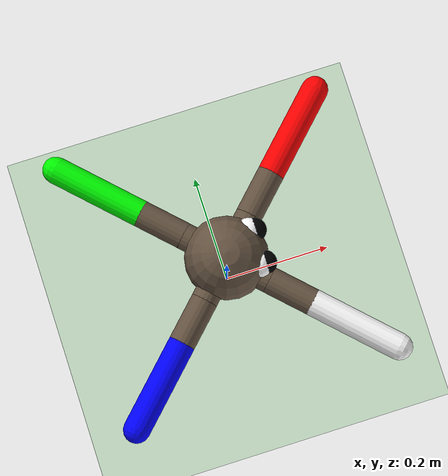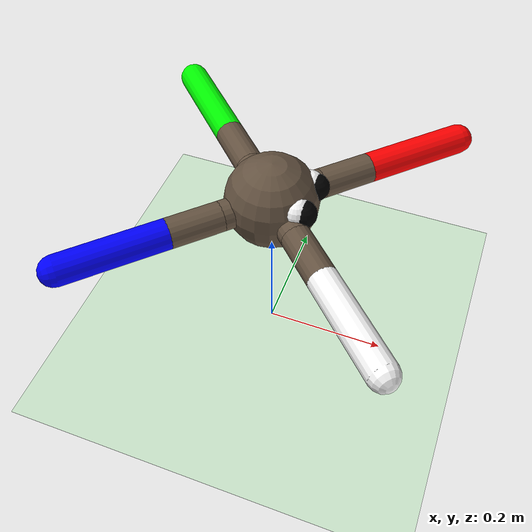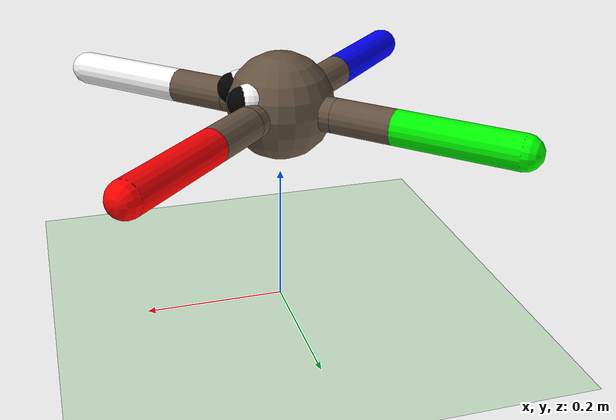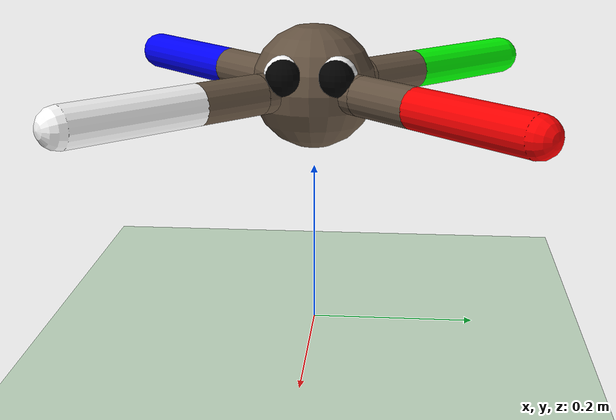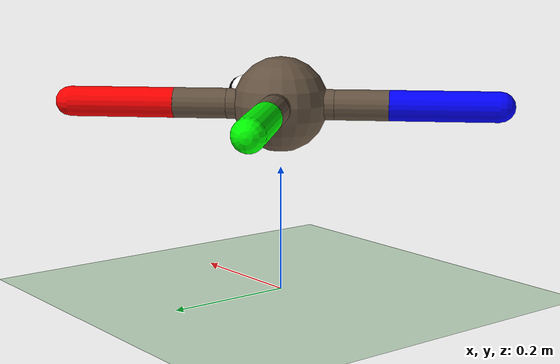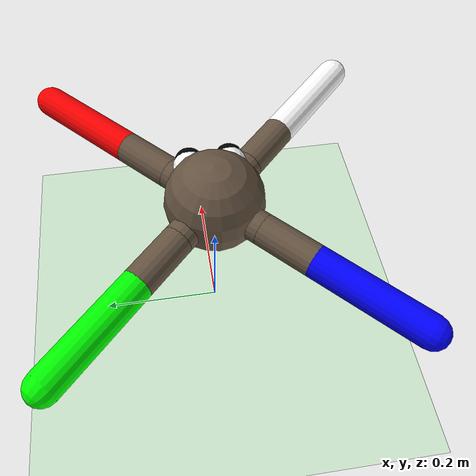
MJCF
<mujoco model="ant">
  <compiler angle="radian" coordinate="local" inertiafromgeom="true"/>

  <option iterations="3" ls_iterations="5" timestep="0.001" integrator="Euler">
    <flag eulerdamp="disable"/>
  </option>

  <default>
    <joint limited="true" damping="0.1"/>
    <geom friction="1 0.5 0.5" rgba="0.4 0.33 0.26 1.0"/>
  </default>
  <asset>
    <texture builtin="gradient" height="100" rgb1="1 1 1" rgb2="0 0 0" type="skybox" width="100"/>
    <texture builtin="flat" height="1278" mark="cross" markrgb="1 1 1" name="texgeom" random="0.01" rgb1="0.8 0.6 0.4" rgb2="0.8 0.6 0.4" type="cube" width="127"/>
    <texture builtin="checker" height="100" name="texplane" rgb1="0 0 0" rgb2="0.8 0.8 0.8" type="2d" width="100"/>
    <material name="MatPlane" reflectance="0.5" shininess="1" specular="1" texrepeat="60 60" texture="texplane"/>
    <material name="geom" texture="texgeom" texuniform="true"/>
  </asset>
  <sensor>
    <gyro name="gyro" site="imu_location" />
    <accelerometer name="accelerometer" site="imu_location" />
    <framezaxis objtype="site" objname="imu_location" name="upvector"/>

  </sensor>

   <worldbody>
    <light cutoff="100" diffuse="1 1 1" dir="-0 0 -1.3" directional="true" exponent="1" pos="0 0 1.3" specular=".1 .1 .1"/>
    <geom conaffinity="1" condim="3" material="MatPlane" name="floor" pos="0 0 0" rgba="0.8 0.9 0.8 1" size="40 40 40" type="plane"/>
    <body name="torso" pos="0 0 0.3">
      <camera name="track" mode="trackcom" pos="0 -1.5 0.3" xyaxes="1 0 0 0 0 1"/>
      <geom name="torso_geom" pos="0 0 0" size="0.075" type="sphere" mass="0.350"/>
      <joint armature="0" damping="0" limited="false" margin="0.01" name="root" pos="0 0 0" type="free"/>
      <site name="imu_location" pos="0 0 0" euler="0 0 0" size="0.01" type="sphere" rgba="1 0 0 1"/>
      <site name="left_eye" pos="0.05 0.03 0.02" size="0.025" type="sphere" rgba="1 1 1 1"/>
      <site name="right_eye" pos="0.05 -0.03 0.02" size="0.025" type="sphere" rgba="1 1 1 1"/>
      <site name="left_pupil" pos="0.06 0.03 0.02" size="0.022" type="sphere" rgba="0 0 0 1"/>
      <site name="right_pupil" pos="0.06 -0.03 0.02" size="0.022" type="sphere" rgba="0 0 0 1"/>

      <body name="front_left_leg" pos="0 0 0">
        <geom fromto="0.0 0.0 0.0 0.06 0.06 0.0" name="aux_1_geom" size="0.024" type="capsule" mass="0.020"/>
        <body name="aux_1" pos="0.06 0.06 0">
          <joint axis="0 0 1" name="hip_1" pos="0.0 0.0 0.0" range="-0.52 0.52" type="hinge"/>
          <geom fromto="0.0 0.0 0.0 0.06 0.06 0.0" name="left_leg_geom" size="0.024" type="capsule" mass="0.080"/>
          <body pos="0.06 0.06 0">
            <joint axis="-1 1 0" name="ankle_1" pos="0.0 0.0 0.0" range="-1.57 1.57" type="hinge"/>
            <geom fromto="0.0 0.0 0.0 0.12 0.12 0.0" name="left_ankle_geom" size="0.024" type="capsule" mass="0.030" rgba="1 0 0 1"/>
          </body>
        </body>
      </body>
      <body name="front_right_leg" pos="0 0 0">
        <geom fromto="0.0 0.0 0.0 -0.06 0.06 0.0" name="aux_2_geom" size="0.024" type="capsule" mass="0.020"/>
        <body name="aux_2" pos="-0.06 0.06 0">
          <joint axis="0 0 1" name="hip_2" pos="0.0 0.0 0.0" range="-0.52 0.52" type="hinge"/>
          <geom fromto="0.0 0.0 0.0 -0.06 0.06 0.0" name="right_leg_geom" size="0.024" type="capsule" mass="0.080"/>
          <body pos="-0.06 0.06 0">
            <joint axis="-1 -1 0" name="ankle_2" pos="0.0 0.0 0.0" range="-1.57 1.57" type="hinge"/>
            <geom fromto="0.0 0.0 0.0 -0.12 0.12 0.0" name="right_ankle_geom" size="0.024" type="capsule" mass="0.030" rgba="0 1 0 1"/>
          </body>
        </body>
      </body>
      <body name="back_leg" pos="0 0 0">
        <geom fromto="0.0 0.0 0.0 -0.06 -0.06 0.0" name="aux_3_geom" size="0.024" type="capsule" mass="0.020"/>
        <body name="aux_3" pos="-0.06 -0.06 0">
          <joint axis="0 0 1" name="hip_3" pos="0.0 0.0 0.0" range="-0.52 0.52" type="hinge"/>
          <geom fromto="0.0 0.0 0.0 -0.06 -0.06 0.0" name="back_leg_geom" size="0.024" type="capsule" mass="0.080"/>
          <body pos="-0.06 -0.06 0">
            <joint axis="1 -1 0" name="ankle_3" pos="0.0 0.0 0.0" range="-1.57 1.57" type="hinge"/>
            <geom fromto="0.0 0.0 0.0 -0.12 -0.12 0.0" name="third_ankle_geom" size="0.024" type="capsule" mass="0.030" rgba="0 0 1 1"/>
          </body>
        </body>
      </body>
      <body name="right_back_leg" pos="0 0 0">
        <geom fromto="0.0 0.0 0.0 0.06 -0.06 0.0" name="aux_4_geom" size="0.024" type="capsule" mass="0.020"/>
        <body name="aux_4" pos="0.06 -0.06 0">
          <joint axis="0 0 1" name="hip_4" pos="0.0 0.0 0.0" range="-0.52 0.52" type="hinge"/>
          <geom fromto="0.0 0.0 0.0 0.06 -0.06 0.0" name="rightback_leg_geom" size="0.024" type="capsule" mass="0.080"/>
          <body pos="0.06 -0.06 0">
            <joint axis="1 1 0" name="ankle_4" pos="0.0 0.0 0.0" range="-1.57 1.57" type="hinge"/>
            <geom fromto="0.0 0.0 0.0 0.12 -0.12 0.0" name="fourth_ankle_geom" size="0.024" type="capsule" mass="0.030" rgba="1 1 1 1"/>
          </body>
        </body>
      </body>
    </body>
  </worldbody>
  <actuator>
    <position joint="hip_1" kp="1.0" kv="0.1" ctrllimited="true" ctrlrange="-0.52 0.52"/>
    <position joint="ankle_1" kp="1.0" kv="0.1" ctrllimited="true" ctrlrange="-1.57 1.57"/>
    <position joint="hip_2" kp="1.0" kv="0.1" ctrllimited="true" ctrlrange="-0.52 0.52"/>
    <position joint="ankle_2" kp="1.0" kv="0.1" ctrllimited="true" ctrlrange="-1.57 1.57"/>
    <position joint="hip_3" kp="1.0" kv="0.1" ctrllimited="true" ctrlrange="-0.52 0.52"/>
    <position joint="ankle_3" kp="1.0" kv="0.1" ctrllimited="true" ctrlrange="-1.57 1.57"/>
    <position joint="hip_4" kp="1.0" kv="0.1" ctrllimited="true" ctrlrange="-0.52 0.52"/>
    <position joint="ankle_4" kp="1.0" kv="0.1" ctrllimited="true" ctrlrange="-1.57 1.57"/>
  </actuator>

    <keyframe>
    <key name="home"
      qpos="
      0 0 0.3
      1 0 0 0
      0.0 0.7 0.0 0.7
      0.0 0.7 0.0 0.7"
        ctrl="
      0.0 0.0 0.0 0.0
      0.0 0.0 0.0 0.0"/>
  </keyframe>

</mujoco>
